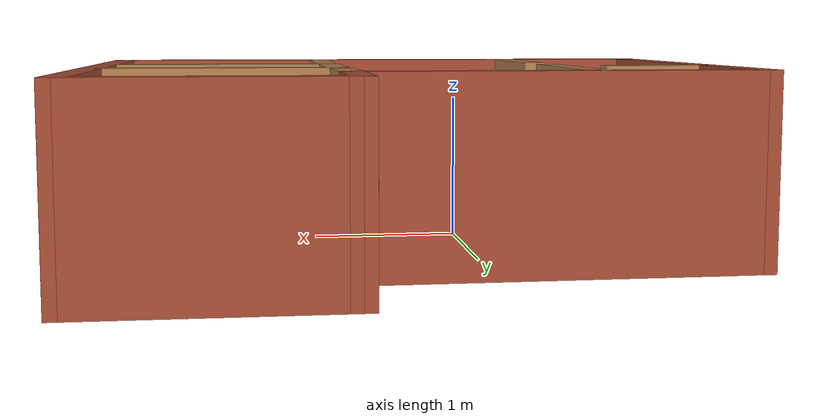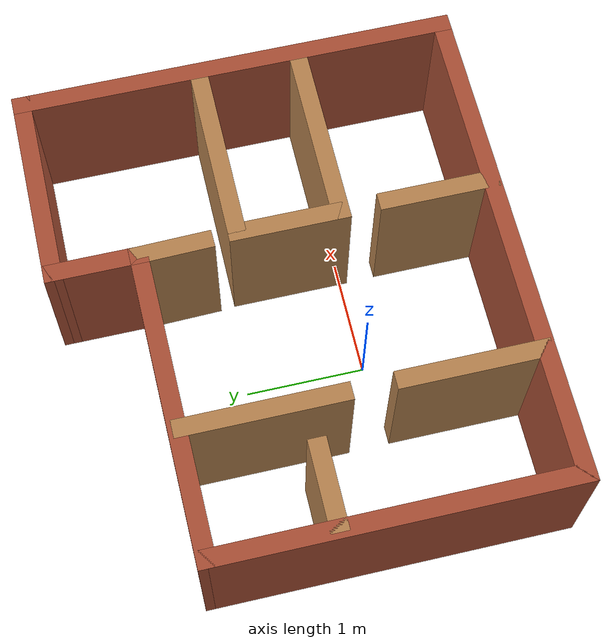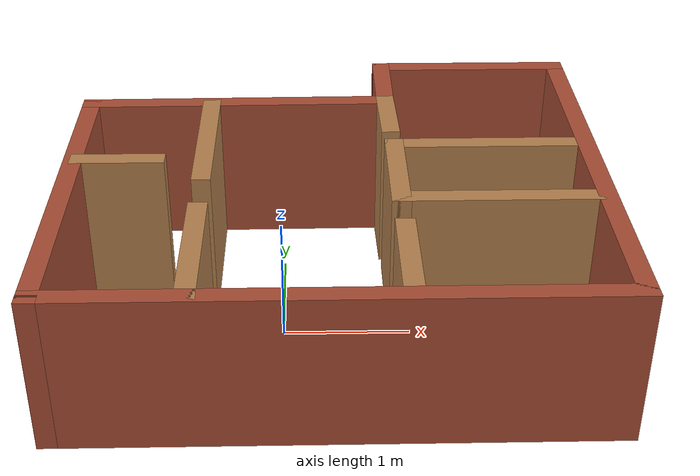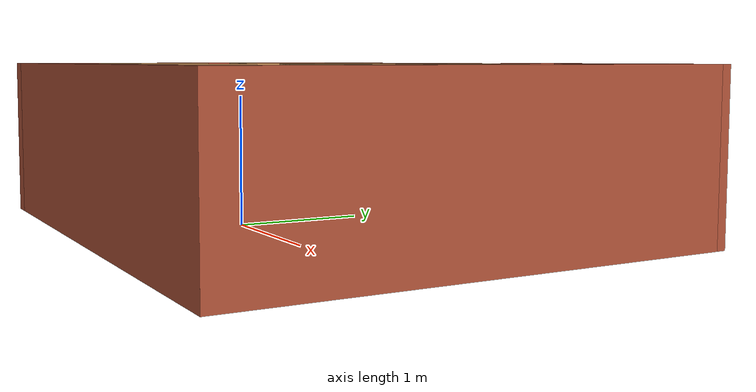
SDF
<?xml version='1.0'?>
<sdf version='1.6'>
  <model name='mybuilding'>
    <pose frame=''>0.402754 0.552529 0 0 -0 0</pose>
    <link name='Wall_1'>
      <collision name='Wall_1_Collision'>
        <geometry>
          <box>
            <size>3.04117 0.15 1.25</size>
          </box>
        </geometry>
        <pose frame=''>0 0 0.625 0 -0 0</pose>
      </collision>
      <visual name='Wall_1_Visual'>
        <pose frame=''>0 0 0.625 0 -0 0</pose>
        <geometry>
          <box>
            <size>3.04117 0.15 1.25</size>
          </box>
        </geometry>
        <material>
          <script>
            <uri>file://media/materials/scripts/gazebo.material</uri>
            <name>Gazebo/Bricks</name>
          </script>
          <ambient>0.760784 0.662745 0.627451 1</ambient>
        </material>
        <meta>
          <layer>0</layer>
        </meta>
      </visual>
      <pose frame=''>-2.04975 -0.356028 0 0 -0 -1.5708</pose>
    </link>
    <link name='Wall_15'>
      <collision name='Wall_15_Collision'>
        <geometry>
          <box>
            <size>2.6701 0.15 1.25</size>
          </box>
        </geometry>
        <pose frame=''>0 0 0.625 0 -0 0</pose>
      </collision>
      <visual name='Wall_15_Visual'>
        <pose frame=''>0 0 0.625 0 -0 0</pose>
        <geometry>
          <box>
            <size>2.6701 0.15 1.25</size>
          </box>
        </geometry>
        <material>
          <script>
            <uri>file://media/materials/scripts/gazebo.material</uri>
            <name>Gazebo/Bricks</name>
          </script>
          <ambient>0.760784 0.662745 0.627451 1</ambient>
        </material>
        <meta>
          <layer>0</layer>
        </meta>
      </visual>
      <pose frame=''>-0.789754 1.09997 0 0 -0 0.008333</pose>
    </link>
    <link name='Wall_17'>
      <collision name='Wall_17_Collision'>
        <geometry>
          <box>
            <size>0.680886 0.15 1.25</size>
          </box>
        </geometry>
        <pose frame=''>0 0 0.625 0 -0 0</pose>
      </collision>
      <visual name='Wall_17_Visual'>
        <pose frame=''>0 0 0.625 0 -0 0</pose>
        <geometry>
          <box>
            <size>0.680886 0.15 1.25</size>
          </box>
        </geometry>
        <material>
          <script>
            <uri>file://media/materials/scripts/gazebo.material</uri>
            <name>Gazebo/Wood</name>
          </script>
          <ambient>1 1 1 1</ambient>
        </material>
        <meta>
          <layer>0</layer>
        </meta>
      </visual>
      <pose frame=''>0.476746 0.844972 0 0 -0 -1.54632</pose>
    </link>
    <link name='Wall_19'>
      <collision name='Wall_19_Collision'>
        <geometry>
          <box>
            <size>1.6 0.15 1.25</size>
          </box>
        </geometry>
        <pose frame=''>0 0 0.625 0 -0 0</pose>
      </collision>
      <visual name='Wall_19_Visual'>
        <pose frame=''>0 0 0.625 0 -0 0</pose>
        <geometry>
          <box>
            <size>1.6 0.15 1.25</size>
          </box>
        </geometry>
        <material>
          <script>
            <uri>file://media/materials/scripts/gazebo.material</uri>
            <name>Gazebo/Wood</name>
          </script>
          <ambient>0.760784 0.662745 0.627451 1</ambient>
        </material>
        <meta>
          <layer>0</layer>
        </meta>
      </visual>
      <pose frame=''>1.22425 0.308472 0 0 -0 0</pose>
    </link>
    <link name='Wall_2'>
      <collision name='Wall_2_Collision'>
        <geometry>
          <box>
            <size>4.25 0.15 1.25</size>
          </box>
        </geometry>
        <pose frame=''>0 0 0.625 0 -0 0</pose>
      </collision>
      <visual name='Wall_2_Visual'>
        <pose frame=''>0 0 0.625 0 -0 0</pose>
        <geometry>
          <box>
            <size>4.25 0.15 1.25</size>
          </box>
        </geometry>
        <material>
          <script>
            <uri>file://media/materials/scripts/gazebo.material</uri>
            <name>Gazebo/Bricks</name>
          </script>
          <ambient>0.760784 0.662745 0.627451 1</ambient>
        </material>
        <meta>
          <layer>0</layer>
        </meta>
      </visual>
      <pose frame=''>0.000246 -1.80153 0 0 -0 0</pose>
    </link>
    <link name='Wall_21'>
      <collision name='Wall_21_Collision'>
        <geometry>
          <box>
            <size>1 0.15 1.25</size>
          </box>
        </geometry>
        <pose frame=''>0 0 0.625 0 -0 0</pose>
      </collision>
      <visual name='Wall_21_Visual'>
        <pose frame=''>0 0 0.625 0 -0 0</pose>
        <geometry>
          <box>
            <size>1 0.15 1.25</size>
          </box>
        </geometry>
        <material>
          <script>
            <uri>file://media/materials/scripts/gazebo.material</uri>
            <name>Gazebo/Wood</name>
          </script>
          <ambient>0.760784 0.662745 0.627451 1</ambient>
        </material>
        <meta>
          <layer>0</layer>
        </meta>
      </visual>
      <pose frame=''>0.499246 -0.116529 0 0 -0 -1.5708</pose>
    </link>
    <link name='Wall_22'>
      <collision name='Wall_22_Collision'>
        <geometry>
          <box>
            <size>1.6 0.15 1.25</size>
          </box>
        </geometry>
        <pose frame=''>0 0 0.625 0 -0 0</pose>
      </collision>
      <visual name='Wall_22_Visual'>
        <pose frame=''>0 0 0.625 0 -0 0</pose>
        <geometry>
          <box>
            <size>1.6 0.15 1.25</size>
          </box>
        </geometry>
        <material>
          <script>
            <uri>file://media/materials/scripts/gazebo.material</uri>
            <name>Gazebo/Wood</name>
          </script>
          <ambient>0.760784 0.662745 0.627451 1</ambient>
        </material>
        <meta>
          <layer>0</layer>
        </meta>
      </visual>
      <pose frame=''>1.22425 -0.541529 0 0 -0 0</pose>
    </link>
    <link name='Wall_24'>
      <collision name='Wall_24_Collision'>
        <geometry>
          <box>
            <size>1 0.15 1.25</size>
          </box>
        </geometry>
        <pose frame=''>0 0 0.625 0 -0 0</pose>
      </collision>
      <visual name='Wall_24_Visual'>
        <pose frame=''>0 0 0.625 0 -0 0</pose>
        <geometry>
          <box>
            <size>1 0.15 1.25</size>
          </box>
        </geometry>
        <material>
          <script>
            <uri>file://media/materials/scripts/gazebo.material</uri>
            <name>Gazebo/Wood</name>
          </script>
          <ambient>0.760784 0.662745 0.627451 1</ambient>
        </material>
        <meta>
          <layer>0</layer>
        </meta>
      </visual>
      <pose frame=''>0.505246 -1.35953 0 0 -0 -1.5708</pose>
    </link>
    <link name='Wall_26'>
      <collision name='Wall_26_Collision'>
        <geometry>
          <box>
            <size>1.25 0.15 1.25</size>
          </box>
        </geometry>
        <pose frame=''>0 0 0.625 0 -0 0</pose>
      </collision>
      <visual name='Wall_26_Visual'>
        <pose frame=''>0 0 0.625 0 -0 0</pose>
        <geometry>
          <box>
            <size>1.25 0.15 1.25</size>
          </box>
        </geometry>
        <material>
          <script>
            <uri>file://media/materials/scripts/gazebo.material</uri>
            <name>Gazebo/Wood</name>
          </script>
          <ambient>0.760784 0.662745 0.627451 1</ambient>
        </material>
        <meta>
          <layer>0</layer>
        </meta>
      </visual>
      <pose frame=''>-1.01575 -1.22853 0 0 -0 1.5708</pose>
    </link>
    <link name='Wall_28'>
      <collision name='Wall_28_Collision'>
        <geometry>
          <box>
            <size>1.4 0.15 1.25</size>
          </box>
        </geometry>
        <pose frame=''>0 0 0.625 0 -0 0</pose>
      </collision>
      <visual name='Wall_28_Visual'>
        <pose frame=''>0 0 0.625 0 -0 0</pose>
        <geometry>
          <box>
            <size>1.4 0.15 1.25</size>
          </box>
        </geometry>
        <material>
          <script>
            <uri>file://media/materials/scripts/gazebo.material</uri>
            <name>Gazebo/Wood</name>
          </script>
          <ambient>0.760784 0.662745 0.627451 1</ambient>
        </material>
        <meta>
          <layer>0</layer>
        </meta>
      </visual>
      <pose frame=''>-1.01975 0.437472 0 0 -0 -1.5708</pose>
    </link>
    <link name='Wall_3'>
      <collision name='Wall_3_Collision'>
        <geometry>
          <box>
            <size>3.75 0.15 1.25</size>
          </box>
        </geometry>
        <pose frame=''>0 0 0.625 0 -0 0</pose>
      </collision>
      <visual name='Wall_3_Visual'>
        <pose frame=''>0 0 0.625 0 -0 0</pose>
        <geometry>
          <box>
            <size>3.75 0.15 1.25</size>
          </box>
        </geometry>
        <material>
          <script>
            <uri>file://media/materials/scripts/gazebo.material</uri>
            <name>Gazebo/Bricks</name>
          </script>
          <ambient>0.760784 0.662745 0.627451 1</ambient>
        </material>
        <meta>
          <layer>0</layer>
        </meta>
      </visual>
      <pose frame=''>2.05025 -0.001529 0 0 -0 1.5708</pose>
    </link>
    <link name='Wall_30'>
      <collision name='Wall_30_Collision'>
        <geometry>
          <box>
            <size>0.75 0.15 1.25</size>
          </box>
        </geometry>
        <pose frame=''>0 0 0.625 0 -0 0</pose>
      </collision>
      <visual name='Wall_30_Visual'>
        <pose frame=''>0 0 0.625 0 -0 0</pose>
        <geometry>
          <box>
            <size>0.75 0.15 1.25</size>
          </box>
        </geometry>
        <material>
          <script>
            <uri>file://media/materials/scripts/gazebo.material</uri>
            <name>Gazebo/Wood</name>
          </script>
          <ambient>0.760784 0.662745 0.627451 1</ambient>
        </material>
        <meta>
          <layer>0</layer>
        </meta>
      </visual>
      <pose frame=''>-1.70175 0.091471 0 0 -0 0</pose>
    </link>
    <link name='Wall_8'>
      <collision name='Wall_8_Collision'>
        <geometry>
          <box>
            <size>1.72999 0.15 1.25</size>
          </box>
        </geometry>
        <pose frame=''>0 0 0.625 0 -0 0</pose>
      </collision>
      <visual name='Wall_8_Visual'>
        <pose frame=''>0 0 0.625 0 -0 0</pose>
        <geometry>
          <box>
            <size>1.72999 0.15 1.25</size>
          </box>
        </geometry>
        <material>
          <script>
            <uri>file://media/materials/scripts/gazebo.material</uri>
            <name>Gazebo/Bricks</name>
          </script>
          <ambient>0.760784 0.662745 0.627451 1</ambient>
        </material>
        <meta>
          <layer>0</layer>
        </meta>
      </visual>
      <pose frame=''>1.26025 1.79997 0 0 -0 3.13969</pose>
    </link>
    <link name='Wall_9'>
      <collision name='Wall_9_Collision'>
        <geometry>
          <box>
            <size>0.841 0.15 1.25</size>
          </box>
        </geometry>
        <pose frame=''>0 0 0.625 0 -0 0</pose>
      </collision>
      <visual name='Wall_9_Visual'>
        <pose frame=''>0 0 0.625 0 -0 0</pose>
        <geometry>
          <box>
            <size>0.841 0.15 1.25</size>
          </box>
        </geometry>
        <material>
          <script>
            <uri>file://media/materials/scripts/gazebo.material</uri>
            <name>Gazebo/Bricks</name>
          </script>
          <ambient>0.760784 0.662745 0.627451 1</ambient>
        </material>
        <meta>
          <layer>0</layer>
        </meta>
      </visual>
      <pose frame=''>0.470246 1.45597 0 0 -0 -1.5708</pose>
    </link>
    <static>1</static>
  </model>
</sdf>
